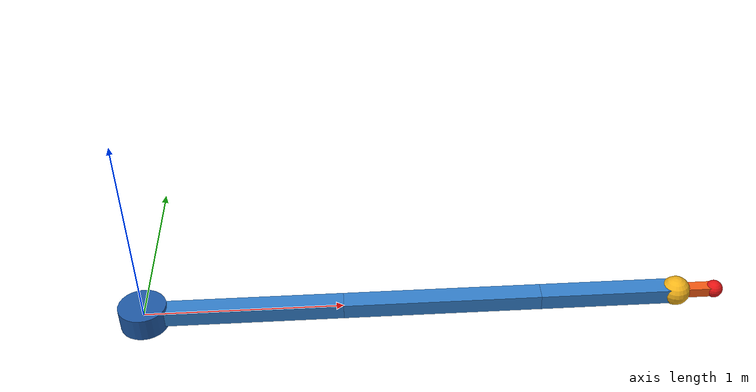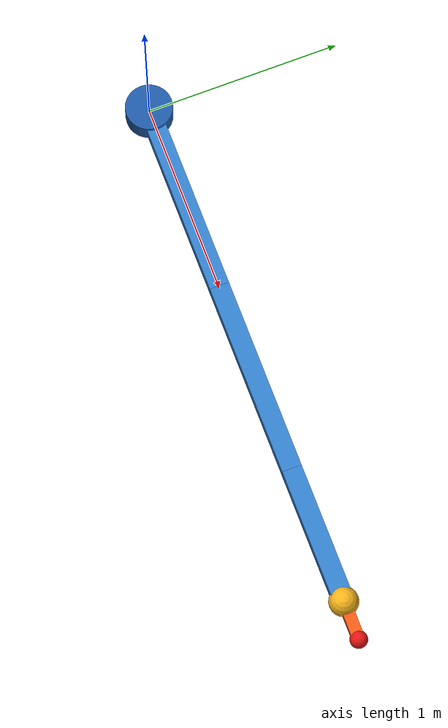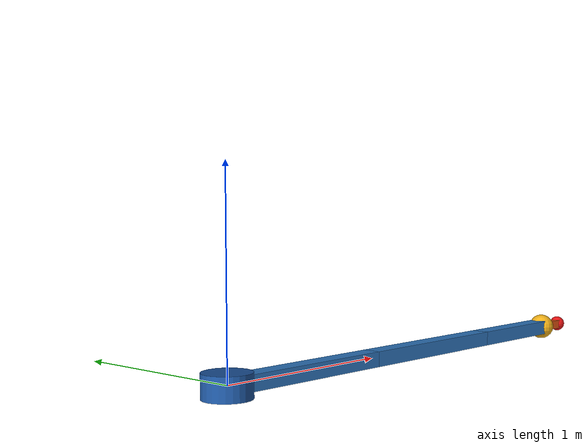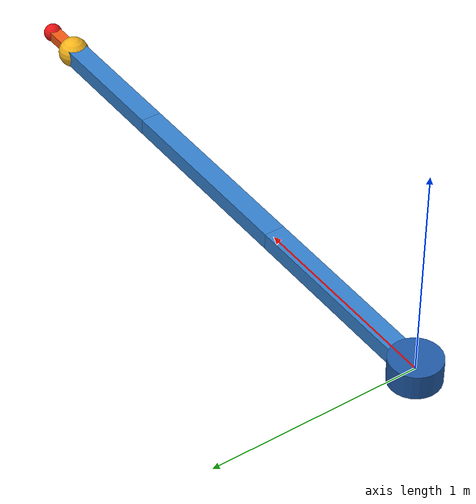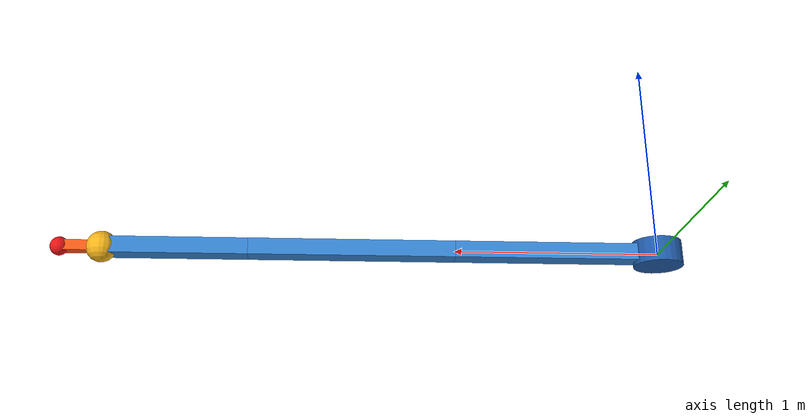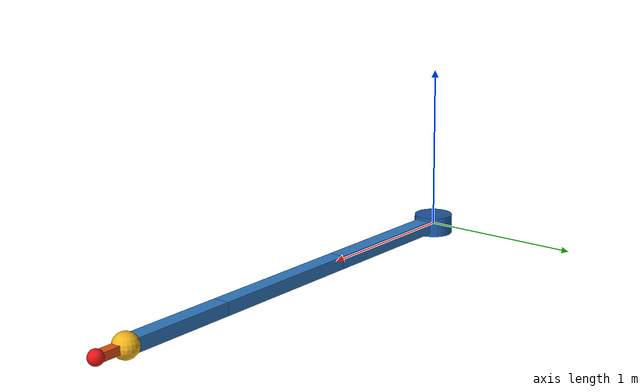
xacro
<?xml version="1.0"?>
<robot xmlns:xacro="http://www.ros.org/wiki/xacro" name="planar_tool_arm">
  <!-- Keep these dimensions aligned with configs/demo_planar_arm.yaml. -->
  <xacro:property name="link1_length" value="1.0"/>
  <xacro:property name="link2_length" value="1.0"/>
  <xacro:property name="link3_length" value="0.7"/>
  <xacro:property name="link_width" value="0.10"/>
  <xacro:property name="link_height" value="0.08"/>
  <xacro:property name="joint_radius" value="0.075"/>
  <xacro:property name="joint_height" value="0.12"/>
  <!-- Defaults are the inverse of force-aware short_inline tool_T_ee. -->
  <xacro:arg name="ee_to_tool_x" default="0.20"/>
  <xacro:arg name="ee_to_tool_y" default="0.0"/>
  <xacro:arg name="ee_to_tool_yaw" default="0.0"/>
  <xacro:arg name="tool_body_length" default="0.20"/>
  <xacro:property name="ee_to_tool_x" value="$(arg ee_to_tool_x)"/>
  <xacro:property name="ee_to_tool_y" value="$(arg ee_to_tool_y)"/>
  <xacro:property name="ee_to_tool_yaw" value="$(arg ee_to_tool_yaw)"/>
  <xacro:property name="tool_body_length" value="$(arg tool_body_length)"/>

  <material name="base_blue">
    <color rgba="0.12 0.35 0.65 1.0"/>
  </material>
  <material name="link_blue">
    <color rgba="0.20 0.50 0.80 1.0"/>
  </material>
  <material name="joint_gray">
    <color rgba="0.35 0.38 0.42 1.0"/>
  </material>
  <material name="ee_yellow">
    <color rgba="0.95 0.70 0.10 1.0"/>
  </material>
  <material name="tool_orange">
    <color rgba="0.95 0.35 0.08 1.0"/>
  </material>
  <material name="tool_tip_red">
    <color rgba="0.90 0.08 0.08 1.0"/>
  </material>

  <xacro:macro name="planar_link" params="name length">
    <link name="${name}">
      <visual>
        <origin xyz="${length / 2.0} 0 0" rpy="0 0 0"/>
        <geometry>
          <box size="${length} ${link_width} ${link_height}"/>
        </geometry>
        <material name="link_blue"/>
      </visual>
      <collision>
        <origin xyz="${length / 2.0} 0 0" rpy="0 0 0"/>
        <geometry>
          <box size="${length} ${link_width} ${link_height}"/>
        </geometry>
      </collision>
    </link>
  </xacro:macro>

  <link name="base_link">
    <visual>
      <origin xyz="0 0 0" rpy="0 0 0"/>
      <geometry>
        <cylinder radius="0.12" length="${joint_height}"/>
      </geometry>
      <material name="base_blue"/>
    </visual>
    <collision>
      <origin xyz="0 0 0" rpy="0 0 0"/>
      <geometry>
        <cylinder radius="0.12" length="${joint_height}"/>
      </geometry>
    </collision>
  </link>

  <xacro:planar_link name="link1" length="${link1_length}"/>
  <xacro:planar_link name="link2" length="${link2_length}"/>
  <xacro:planar_link name="link3" length="${link3_length}"/>

  <link name="ee_link">
    <visual>
      <origin xyz="0 0 0" rpy="0 0 0"/>
      <geometry>
        <sphere radius="${joint_radius}"/>
      </geometry>
      <material name="ee_yellow"/>
    </visual>
  </link>

  <link name="tool_link">
    <visual>
      <!-- The tool frame is the Phase 1 tool/tool-tip pose. The body extends
           backward from that frame toward the end effector. -->
      <origin xyz="${-tool_body_length / 2.0} 0 0" rpy="0 0 0"/>
      <geometry>
        <box size="${tool_body_length} 0.06 0.05"/>
      </geometry>
      <material name="tool_orange"/>
    </visual>
    <collision>
      <origin xyz="${-tool_body_length / 2.0} 0 0" rpy="0 0 0"/>
      <geometry>
        <box size="${tool_body_length} 0.06 0.05"/>
      </geometry>
    </collision>
  </link>

  <link name="tool_tip_link">
    <visual>
      <origin xyz="0 0 0" rpy="0 0 0"/>
      <geometry>
        <sphere radius="0.045"/>
      </geometry>
      <material name="tool_tip_red"/>
    </visual>
  </link>

  <joint name="joint1" type="revolute">
    <parent link="base_link"/>
    <child link="link1"/>
    <origin xyz="0 0 0" rpy="0 0 0"/>
    <axis xyz="0 0 1"/>
    <limit lower="-3.141592653589793" upper="3.141592653589793"
           effort="18.0" velocity="2.0"/>
  </joint>

  <joint name="joint2" type="revolute">
    <parent link="link1"/>
    <child link="link2"/>
    <origin xyz="${link1_length} 0 0" rpy="0 0 0"/>
    <axis xyz="0 0 1"/>
    <limit lower="-2.6179938779914944" upper="2.6179938779914944"
           effort="12.0" velocity="2.0"/>
  </joint>

  <joint name="joint3" type="revolute">
    <parent link="link2"/>
    <child link="link3"/>
    <origin xyz="${link2_length} 0 0" rpy="0 0 0"/>
    <axis xyz="0 0 1"/>
    <limit lower="-2.6179938779914944" upper="2.6179938779914944"
           effort="8.0" velocity="2.0"/>
  </joint>

  <joint name="ee_fixed_joint" type="fixed">
    <parent link="link3"/>
    <child link="ee_link"/>
    <origin xyz="${link3_length} 0 0" rpy="0 0 0"/>
  </joint>

  <joint name="tool_fixed_joint" type="fixed">
    <parent link="ee_link"/>
    <child link="tool_link"/>
    <origin xyz="${ee_to_tool_x} ${ee_to_tool_y} 0"
            rpy="0 0 ${ee_to_tool_yaw}"/>
  </joint>

  <!-- Phase 1 explicitly treats the tool frame and tool-tip frame as equal. -->
  <joint name="tool_tip_fixed_joint" type="fixed">
    <parent link="tool_link"/>
    <child link="tool_tip_link"/>
    <origin xyz="0 0 0" rpy="0 0 0"/>
  </joint>

  <!-- Position-only mock hardware for later ros2_control trajectory execution. -->
  <ros2_control name="PlanarToolArmSystem" type="system">
    <hardware>
      <plugin>mock_components/GenericSystem</plugin>
      <param name="state_following_offset">0.0</param>
    </hardware>
    <joint name="joint1">
      <command_interface name="position"/>
      <state_interface name="position">
        <param name="initial_value">0.0</param>
      </state_interface>
    </joint>
    <joint name="joint2">
      <command_interface name="position"/>
      <state_interface name="position">
        <param name="initial_value">0.0</param>
      </state_interface>
    </joint>
    <joint name="joint3">
      <command_interface name="position"/>
      <state_interface name="position">
        <param name="initial_value">0.0</param>
      </state_interface>
    </joint>
  </ros2_control>
</robot>
